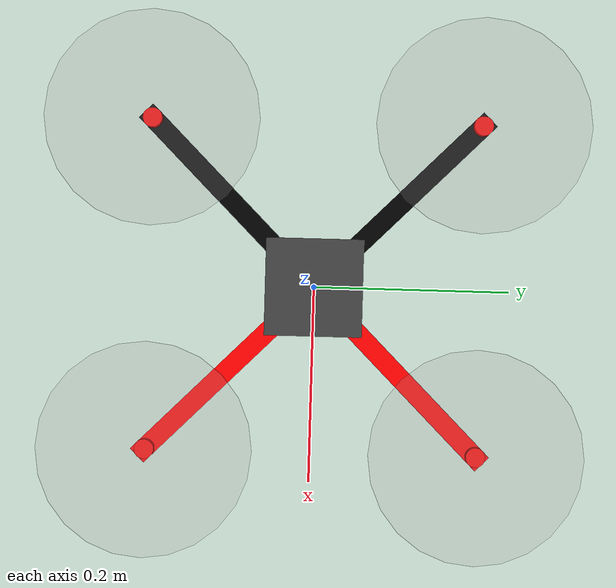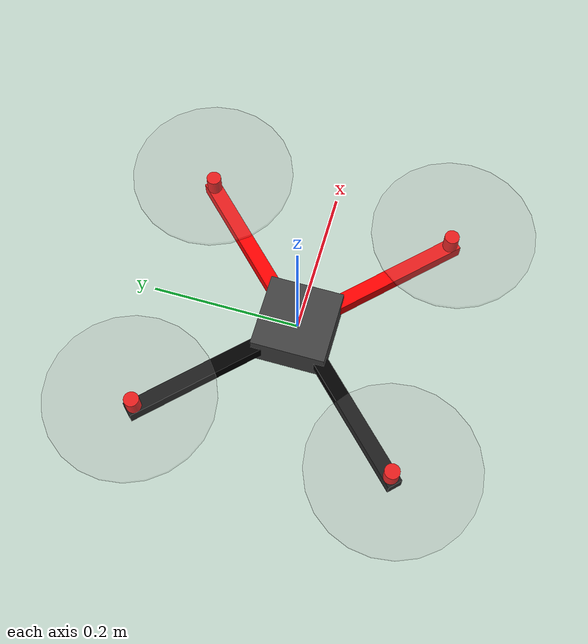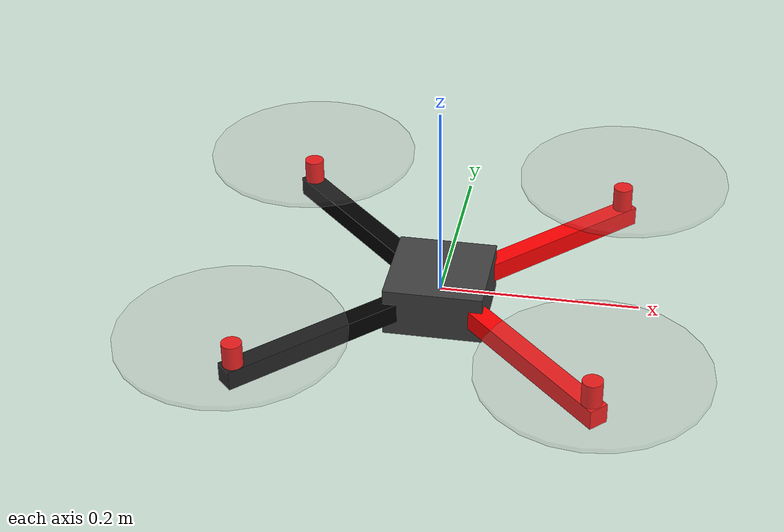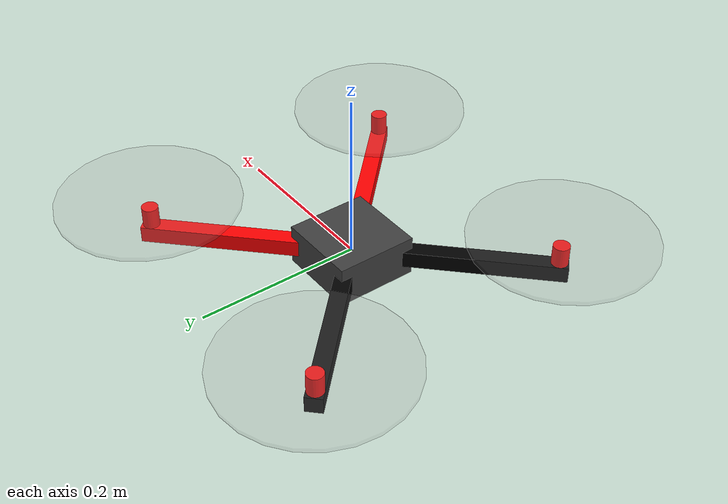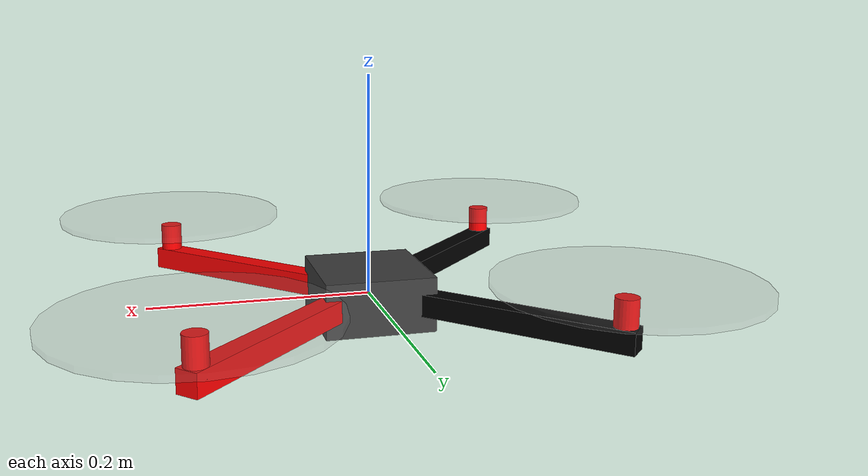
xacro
<?xml version="1.0"?>
<robot xmlns:xacro="http://ros.org/wiki/xacro" name="f450">
  <!-- Parameters -->
  <xacro:property name="frame_radius" value="0.5"/>   <!-- ~450mm diagonal => ~225mm arm half-length -->
  <xacro:property name="body_radius"  value="0.09"/>    <!-- central plate radius -->
  <xacro:property name="body_height"  value="0.03"/>
  <xacro:property name="body_mass"    value="0.5"/>     <!-- tweak with real mass -->
  <xacro:property name="arm_mass"     value="0.08"/>
  <xacro:property name="blade_mass"   value="0.03"/>
  <xacro:property name="motor_mass"   value="0.03"/>

  <!-- Inertial helper -->
  <xacro:macro name="inertial_cylinder" params="m r h">
    <inertial>
      <origin xyz="0 0 0" rpy="0 0 0"/>
      <mass value="${m}"/>
      <!-- Solid cylinder about z-axis -->
      <inertia
        ixx="${(1.0/12.0)*m*(3*r*r + h*h)}"
        iyy="${(1.0/12.0)*m*(3*r*r + h*h)}"
        izz="${0.5*m*r*r}"
        ixy="0.0" ixz="0.0" iyz="0.0"/>
    </inertial>
  </xacro:macro>

<!-- Inertial helper for box -->
  <xacro:macro name="inertial_box" params="m l w h">
    <inertial>
      <origin xyz="0 0 0" rpy="0 0 0"/>
      <mass value="${m}"/>
      <!-- Solid box (rectangular prism) -->
      <inertia
        ixx="${(1.0/12.0)*m*(h*h + w*w)}"
        iyy="${(1.0/12.0)*m*(h*h + l*l)}"
        izz="${(1.0/12.0)*m*(l*l + w*w)}"
        ixy="0.0" ixz="0.0" iyz="0.0"/>
    </inertial>
  </xacro:macro>

  <!-- Base link (central plate) -->
  <link name="base_link">
    <visual>
      <origin xyz="0 0 0" rpy="0 0 0"/>
      <geometry><box size="0.10 0.10 0.05"/></geometry>
      <material name="dark_gray"><color rgba="0.25 0.25 0.25 0.98"/></material>
    </visual>
    <collision>
      <origin xyz="0 0 0" rpy="0 0 0"/>
      <geometry><box size="0.10 0.10 0.07"/></geometry>
    </collision>
    <xacro:inertial_box m="${body_mass}" l="0.10" w="0.10" h="0.07"/>
  </link>

<!-- Arms + motor + rotors (x4) -->
<xacro:macro name="arm_with_rotor" params="name angle color_name color_rgba">

    <!-- arm link -->
    <link name="${name}_arm">
      <visual>
        <origin xyz="${frame_radius/4} 0 0" rpy="0 0 0"/>  <!-- Offset = half of arm length -->
        <geometry><box size="${frame_radius/2} 0.02 0.02"/></geometry>  <!-- 25cm long -->
        <material name="${color_name}"><color rgba="${color_rgba}"/></material>
      </visual>
      <collision>
        <origin xyz="${frame_radius/4} 0 0" rpy="0 0 0"/>
        <geometry><box size="${frame_radius/2} 0.02 0.02"/></geometry>
      </collision>
      <inertial>
        <origin xyz="${frame_radius/4} 0 0" rpy="0 0 0"/>
        <mass value="${arm_mass}"/>
        <inertia ixx="0.0005" iyy="0.002" izz="0.002" ixy="0" ixz="0" iyz="0"/>
      </inertial>
    </link>

    <joint name="base_to_${name}_arm" type="fixed">
      <origin xyz="0 0 0" rpy="0 0 ${angle}"/>
      <parent link="base_link"/>
      <child link="${name}_arm"/>
    </joint>

    <!-- motor at arm tip -->
    <link name="${name}_motor">
      <visual>
        <origin xyz="${frame_radius/2.0-0.011} 0 0.0175" rpy="0 0 0"/>
        <geometry><cylinder radius="0.010" length="0.035"/></geometry>
        <material name="red"><color rgba="1.0 0.0 0.0 1.0"/></material>
      </visual>
      <collision>
        <origin xyz="${frame_radius/2.0-0.011} 0 0.0175" rpy="0 0 0"/>
        <geometry><cylinder radius="0.015" length="0.035"/></geometry>
      </collision>
      <inertial>
        <origin xyz="${frame_radius/2.0} 0 0.0" rpy="0 0 0"/>
        <mass value="${motor_mass}"/>
        <inertia ixx="0.0001" iyy="0.0001" izz="0.0001" ixy="0" ixz="0" iyz="0"/>
      </inertial>
    </link>

    <!-- blade at arm tip -->
    <link name="${name}_blade">
      <visual>
        <origin xyz="${frame_radius/2.0-0.011} 0 0.045" rpy="0 0 0"/>
        <geometry><cylinder radius="0.11" length="0.005"/></geometry>
        <material name="grey"><color rgba="0.6 0.6 0.6 0.2"/></material>
      </visual>
      <collision>
        <origin xyz="${frame_radius/2.0-0.011} 0 0.045" rpy="0 0 0"/>
        <geometry><cylinder radius="0.11" length="0.005"/></geometry>
      </collision>
      <inertial>
        <origin xyz="${frame_radius/2.0} 0 0.045" rpy="0 0 0"/>
        <mass value="${blade_mass}"/>
        <inertia ixx="0.0001" iyy="0.0001" izz="0.0001" ixy="0" ixz="0" iyz="0"/>
      </inertial>
    </link>

    <joint name="${name}_arm_to_motor" type="fixed">
      <origin xyz="0 0 0" rpy="0 0 0"/>
      <parent link="${name}_arm"/>
      <child link="${name}_motor"/>
    </joint>

    <joint name="${name}_motor_to_blade" type="fixed">
      <origin xyz="0 0 0" rpy="0 0 0"/>
      <parent link="${name}_motor"/>
      <child link="${name}_blade"/>
    </joint>
  </xacro:macro>

<xacro:arm_with_rotor name="front_right" angle="${-45 * 3.14159265/180.0}"
                      color_name="arm_front_right" color_rgba="1.0 0.0 0.0 1.0"/>
<xacro:arm_with_rotor name="front_left"  angle="${45 * 3.14159265/180.0}"
                      color_name="arm_front_left" color_rgba="1.0 0.0 0.0 1.0"/>
<xacro:arm_with_rotor name="rear_right"  angle="${-135 * 3.14159265/180.0}"
                      color_name="arm_rear_right" color_rgba="0.0 0.0 0.0 1.0"/>
<xacro:arm_with_rotor name="rear_left"   angle="${135 * 3.14159265/180.0}"
                      color_name="arm_rear_left" color_rgba="0.0 0.0 0.0 1.0"/>
</robot>
